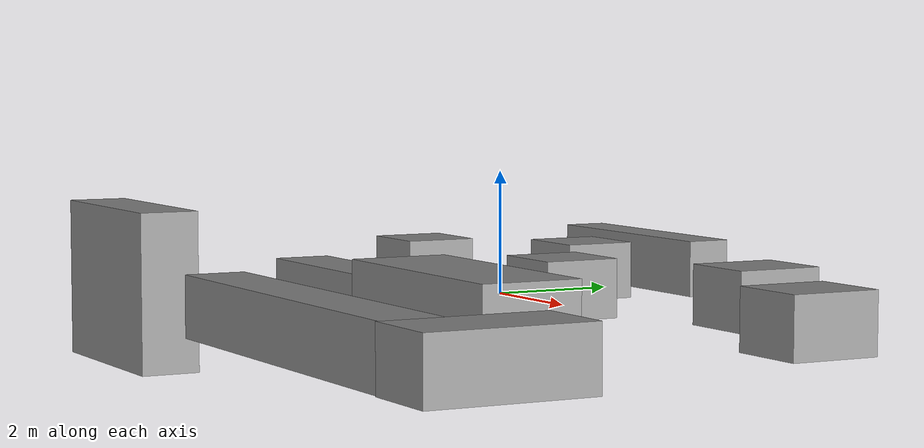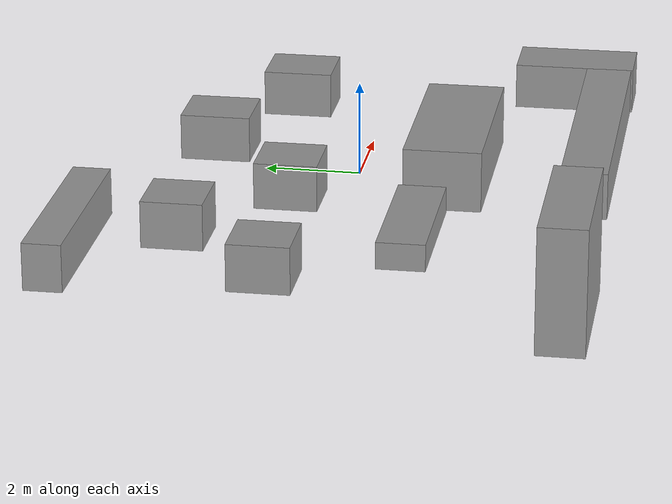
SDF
<?xml version='1.0'?>
<sdf version='1.7'>
  <model name='Clase2'>
    <link name='link_3'>
      <inertial>
        <mass>1.74152</mass>
        <inertia>
          <ixx>0.386103</ixx>
          <ixy>0</ixy>
          <ixz>0</ixz>
          <iyy>0.410208</iyy>
          <iyz>0</iyz>
          <izz>0.506057</izz>
        </inertia>
        <pose>0 0 0 0 -0 0</pose>
      </inertial>
      <pose>-4.93354 1.16545 0 0 -0 0</pose>
      <visual name='visual'>
        <pose>0 0 0 0 -0 0</pose>
        <geometry>
          <box>
            <size>1.3515 1.28859 1</size>
          </box>
        </geometry>
        <material>
          <lighting>1</lighting>
          <script>
            <uri>file://media/materials/scripts/gazebo.material</uri>
            <name>Gazebo/Grey</name>
          </script>
          <shader type='pixel'/>
        </material>
        <transparency>0</transparency>
        <cast_shadows>1</cast_shadows>
      </visual>
      <collision name='collision'>
        <laser_retro>0</laser_retro>
        <max_contacts>10</max_contacts>
        <pose>0 0 0 0 -0 0</pose>
        <geometry>
          <box>
            <size>1.3515 1.28859 1</size>
          </box>
        </geometry>
        <surface>
          <friction>
            <ode>
              <mu>1</mu>
              <mu2>1</mu2>
              <fdir1>0 0 0</fdir1>
              <slip1>0</slip1>
              <slip2>0</slip2>
            </ode>
            <torsional>
              <coefficient>1</coefficient>
              <patch_radius>0</patch_radius>
              <surface_radius>0</surface_radius>
              <use_patch_radius>1</use_patch_radius>
              <ode>
                <slip>0</slip>
              </ode>
            </torsional>
          </friction>
          <bounce>
            <restitution_coefficient>0</restitution_coefficient>
            <threshold>1e+06</threshold>
          </bounce>
          <contact>
            <collide_without_contact>0</collide_without_contact>
            <collide_without_contact_bitmask>1</collide_without_contact_bitmask>
            <collide_bitmask>1</collide_bitmask>
            <ode>
              <soft_cfm>0</soft_cfm>
              <soft_erp>0.2</soft_erp>
              <kp>1e+13</kp>
              <kd>1</kd>
              <max_vel>0.01</max_vel>
              <min_depth>0</min_depth>
            </ode>
            <bullet>
              <split_impulse>1</split_impulse>
              <split_impulse_penetration_threshold>-0.01</split_impulse_penetration_threshold>
              <soft_cfm>0</soft_cfm>
              <soft_erp>0.2</soft_erp>
              <kp>1e+13</kp>
              <kd>1</kd>
            </bullet>
          </contact>
        </surface>
      </collision>
    </link>
    <link name='link_3_clone'>
      <inertial>
        <mass>1.8185</mass>
        <inertia>
          <ixx>0.425906</ixx>
          <ixy>0</ixy>
          <ixz>0</ixz>
          <iyy>0.42834</iyy>
          <iyz>0</iyz>
          <izz>0.551163</izz>
        </inertia>
        <pose>0 0 0 0 -0 0</pose>
      </inertial>
      <pose>-0.416889 1.41685 0 0 -0 0</pose>
      <visual name='visual'>
        <pose>0 0 0 0 -0 0</pose>
        <geometry>
          <box>
            <size>1.3515 1.34555 1</size>
          </box>
        </geometry>
        <material>
          <lighting>1</lighting>
          <script>
            <uri>file://media/materials/scripts/gazebo.material</uri>
            <name>Gazebo/Grey</name>
          </script>
          <shader type='pixel'/>
        </material>
        <transparency>0</transparency>
        <cast_shadows>1</cast_shadows>
      </visual>
      <collision name='collision'>
        <laser_retro>0</laser_retro>
        <max_contacts>10</max_contacts>
        <pose>0 0 0 0 -0 0</pose>
        <geometry>
          <box>
            <size>1.3515 1.34555 1</size>
          </box>
        </geometry>
        <surface>
          <friction>
            <ode>
              <mu>1</mu>
              <mu2>1</mu2>
              <fdir1>0 0 0</fdir1>
              <slip1>0</slip1>
              <slip2>0</slip2>
            </ode>
            <torsional>
              <coefficient>1</coefficient>
              <patch_radius>0</patch_radius>
              <surface_radius>0</surface_radius>
              <use_patch_radius>1</use_patch_radius>
              <ode>
                <slip>0</slip>
              </ode>
            </torsional>
          </friction>
          <bounce>
            <restitution_coefficient>0</restitution_coefficient>
            <threshold>1e+06</threshold>
          </bounce>
          <contact>
            <collide_without_contact>0</collide_without_contact>
            <collide_without_contact_bitmask>1</collide_without_contact_bitmask>
            <collide_bitmask>1</collide_bitmask>
            <ode>
              <soft_cfm>0</soft_cfm>
              <soft_erp>0.2</soft_erp>
              <kp>1e+13</kp>
              <kd>1</kd>
              <max_vel>0.01</max_vel>
              <min_depth>0</min_depth>
            </ode>
            <bullet>
              <split_impulse>1</split_impulse>
              <split_impulse_penetration_threshold>-0.01</split_impulse_penetration_threshold>
              <soft_cfm>0</soft_cfm>
              <soft_erp>0.2</soft_erp>
              <kp>1e+13</kp>
              <kd>1</kd>
            </bullet>
          </contact>
        </surface>
      </collision>
    </link>
    <link name='link_3_clone_0'>
      <inertial>
        <mass>2.04941</mass>
        <inertia>
          <ixx>0.563501</ixx>
          <ixy>0</ixy>
          <ixz>0</ixz>
          <iyy>0.48273</iyy>
          <iyz>0</iyz>
          <izz>0.704662</izz>
        </inertia>
        <pose>0 0 0 0 -0 0</pose>
      </inertial>
      <pose>5.46668 2.16403 0 0 -0 0</pose>
      <visual name='visual'>
        <pose>0 0 0 0 -0 0</pose>
        <geometry>
          <box>
            <size>1.3515 1.51641 1</size>
          </box>
        </geometry>
        <material>
          <lighting>1</lighting>
          <script>
            <uri>file://media/materials/scripts/gazebo.material</uri>
            <name>Gazebo/Grey</name>
          </script>
          <shader type='pixel'/>
        </material>
        <transparency>0</transparency>
        <cast_shadows>1</cast_shadows>
      </visual>
      <collision name='collision'>
        <laser_retro>0</laser_retro>
        <max_contacts>10</max_contacts>
        <pose>0 0 0 0 -0 0</pose>
        <geometry>
          <box>
            <size>1.3515 1.51641 1</size>
          </box>
        </geometry>
        <surface>
          <friction>
            <ode>
              <mu>1</mu>
              <mu2>1</mu2>
              <fdir1>0 0 0</fdir1>
              <slip1>0</slip1>
              <slip2>0</slip2>
            </ode>
            <torsional>
              <coefficient>1</coefficient>
              <patch_radius>0</patch_radius>
              <surface_radius>0</surface_radius>
              <use_patch_radius>1</use_patch_radius>
              <ode>
                <slip>0</slip>
              </ode>
            </torsional>
          </friction>
          <bounce>
            <restitution_coefficient>0</restitution_coefficient>
            <threshold>1e+06</threshold>
          </bounce>
          <contact>
            <collide_without_contact>0</collide_without_contact>
            <collide_without_contact_bitmask>1</collide_without_contact_bitmask>
            <collide_bitmask>1</collide_bitmask>
            <ode>
              <soft_cfm>0</soft_cfm>
              <soft_erp>0.2</soft_erp>
              <kp>1e+13</kp>
              <kd>1</kd>
              <max_vel>0.01</max_vel>
              <min_depth>0</min_depth>
            </ode>
            <bullet>
              <split_impulse>1</split_impulse>
              <split_impulse_penetration_threshold>-0.01</split_impulse_penetration_threshold>
              <soft_cfm>0</soft_cfm>
              <soft_erp>0.2</soft_erp>
              <kp>1e+13</kp>
              <kd>1</kd>
            </bullet>
          </contact>
        </surface>
      </collision>
    </link>
    <link name='link_3_clone_1'>
      <inertial>
        <mass>2.04941</mass>
        <inertia>
          <ixx>0.563501</ixx>
          <ixy>0</ixy>
          <ixz>0</ixz>
          <iyy>0.48273</iyy>
          <iyz>0</iyz>
          <izz>0.704662</izz>
        </inertia>
        <pose>0 0 0 0 -0 0</pose>
      </inertial>
      <pose>2.31164 3.44779 0 0 -0 0</pose>
      <visual name='visual'>
        <pose>0 0 0 0 -0 0</pose>
        <geometry>
          <box>
            <size>1.3515 1.51641 1</size>
          </box>
        </geometry>
        <material>
          <lighting>1</lighting>
          <script>
            <uri>file://media/materials/scripts/gazebo.material</uri>
            <name>Gazebo/Grey</name>
          </script>
          <shader type='pixel'/>
        </material>
        <transparency>0</transparency>
        <cast_shadows>1</cast_shadows>
      </visual>
      <collision name='collision'>
        <laser_retro>0</laser_retro>
        <max_contacts>10</max_contacts>
        <pose>0 0 0 0 -0 0</pose>
        <geometry>
          <box>
            <size>1.3515 1.51641 1</size>
          </box>
        </geometry>
        <surface>
          <friction>
            <ode>
              <mu>1</mu>
              <mu2>1</mu2>
              <fdir1>0 0 0</fdir1>
              <slip1>0</slip1>
              <slip2>0</slip2>
            </ode>
            <torsional>
              <coefficient>1</coefficient>
              <patch_radius>0</patch_radius>
              <surface_radius>0</surface_radius>
              <use_patch_radius>1</use_patch_radius>
              <ode>
                <slip>0</slip>
              </ode>
            </torsional>
          </friction>
          <bounce>
            <restitution_coefficient>0</restitution_coefficient>
            <threshold>1e+06</threshold>
          </bounce>
          <contact>
            <collide_without_contact>0</collide_without_contact>
            <collide_without_contact_bitmask>1</collide_without_contact_bitmask>
            <collide_bitmask>1</collide_bitmask>
            <ode>
              <soft_cfm>0</soft_cfm>
              <soft_erp>0.2</soft_erp>
              <kp>1e+13</kp>
              <kd>1</kd>
              <max_vel>0.01</max_vel>
              <min_depth>0</min_depth>
            </ode>
            <bullet>
              <split_impulse>1</split_impulse>
              <split_impulse_penetration_threshold>-0.01</split_impulse_penetration_threshold>
              <soft_cfm>0</soft_cfm>
              <soft_erp>0.2</soft_erp>
              <kp>1e+13</kp>
              <kd>1</kd>
            </bullet>
          </contact>
        </surface>
      </collision>
    </link>
    <link name='link_3_clone_2'>
      <inertial>
        <mass>1.74223</mass>
        <inertia>
          <ixx>0.386462</ixx>
          <ixy>0</ixy>
          <ixz>0</ixz>
          <iyy>0.410376</iyy>
          <iyz>0</iyz>
          <izz>0.506466</izz>
        </inertia>
        <pose>0 0 0 0 -0 0</pose>
      </inertial>
      <pose>-2.92921 3.31447 0 0 -0 0</pose>
      <visual name='visual'>
        <pose>0 0 0 0 -0 0</pose>
        <geometry>
          <box>
            <size>1.3515 1.28912 1</size>
          </box>
        </geometry>
        <material>
          <lighting>1</lighting>
          <script>
            <uri>file://media/materials/scripts/gazebo.material</uri>
            <name>Gazebo/Grey</name>
          </script>
          <shader type='pixel'/>
        </material>
        <transparency>0</transparency>
        <cast_shadows>1</cast_shadows>
      </visual>
      <collision name='collision'>
        <laser_retro>0</laser_retro>
        <max_contacts>10</max_contacts>
        <pose>0 0 0 0 -0 0</pose>
        <geometry>
          <box>
            <size>1.3515 1.28912 1</size>
          </box>
        </geometry>
        <surface>
          <friction>
            <ode>
              <mu>1</mu>
              <mu2>1</mu2>
              <fdir1>0 0 0</fdir1>
              <slip1>0</slip1>
              <slip2>0</slip2>
            </ode>
            <torsional>
              <coefficient>1</coefficient>
              <patch_radius>0</patch_radius>
              <surface_radius>0</surface_radius>
              <use_patch_radius>1</use_patch_radius>
              <ode>
                <slip>0</slip>
              </ode>
            </torsional>
          </friction>
          <bounce>
            <restitution_coefficient>0</restitution_coefficient>
            <threshold>1e+06</threshold>
          </bounce>
          <contact>
            <collide_without_contact>0</collide_without_contact>
            <collide_without_contact_bitmask>1</collide_without_contact_bitmask>
            <collide_bitmask>1</collide_bitmask>
            <ode>
              <soft_cfm>0</soft_cfm>
              <soft_erp>0.2</soft_erp>
              <kp>1e+13</kp>
              <kd>1</kd>
              <max_vel>0.01</max_vel>
              <min_depth>0</min_depth>
            </ode>
            <bullet>
              <split_impulse>1</split_impulse>
              <split_impulse_penetration_threshold>-0.01</split_impulse_penetration_threshold>
              <soft_cfm>0</soft_cfm>
              <soft_erp>0.2</soft_erp>
              <kp>1e+13</kp>
              <kd>1</kd>
            </bullet>
          </contact>
        </surface>
      </collision>
    </link>
    <link name='link_4'>
      <inertial>
        <mass>9.47217</mass>
        <inertia>
          <ixx>3.56967</ixx>
          <ixy>0</ixy>
          <ixz>0</ixz>
          <iyy>16.0019</iyy>
          <iyz>0</iyz>
          <izz>16.8245</izz>
        </inertia>
        <pose>0 0 0 0 -0 0</pose>
      </inertial>
      <pose>1.963 -1.76972 0 0 -0 0</pose>
      <visual name='visual'>
        <pose>0 0 0 0 -0 0</pose>
        <geometry>
          <box>
            <size>4.30491 1.66798 1.31914</size>
          </box>
        </geometry>
        <material>
          <lighting>1</lighting>
          <script>
            <uri>file://media/materials/scripts/gazebo.material</uri>
            <name>Gazebo/Grey</name>
          </script>
          <shader type='pixel'/>
        </material>
        <transparency>0</transparency>
        <cast_shadows>1</cast_shadows>
      </visual>
      <collision name='collision'>
        <laser_retro>0</laser_retro>
        <max_contacts>10</max_contacts>
        <pose>0 0 0 0 -0 0</pose>
        <geometry>
          <box>
            <size>4.30491 1.66798 1.31914</size>
          </box>
        </geometry>
        <surface>
          <friction>
            <ode>
              <mu>1</mu>
              <mu2>1</mu2>
              <fdir1>0 0 0</fdir1>
              <slip1>0</slip1>
              <slip2>0</slip2>
            </ode>
            <torsional>
              <coefficient>1</coefficient>
              <patch_radius>0</patch_radius>
              <surface_radius>0</surface_radius>
              <use_patch_radius>1</use_patch_radius>
              <ode>
                <slip>0</slip>
              </ode>
            </torsional>
          </friction>
          <bounce>
            <restitution_coefficient>0</restitution_coefficient>
            <threshold>1e+06</threshold>
          </bounce>
          <contact>
            <collide_without_contact>0</collide_without_contact>
            <collide_without_contact_bitmask>1</collide_without_contact_bitmask>
            <collide_bitmask>1</collide_bitmask>
            <ode>
              <soft_cfm>0</soft_cfm>
              <soft_erp>0.2</soft_erp>
              <kp>1e+13</kp>
              <kd>1</kd>
              <max_vel>0.01</max_vel>
              <min_depth>0</min_depth>
            </ode>
            <bullet>
              <split_impulse>1</split_impulse>
              <split_impulse_penetration_threshold>-0.01</split_impulse_penetration_threshold>
              <soft_cfm>0</soft_cfm>
              <soft_erp>0.2</soft_erp>
              <kp>1e+13</kp>
              <kd>1</kd>
            </bullet>
          </contact>
        </surface>
      </collision>
    </link>
    <link name='link_5'>
      <inertial>
        <mass>3.59017</mass>
        <inertia>
          <ixx>2.4007</ixx>
          <ixy>0</ixy>
          <ixz>0</ixz>
          <iyy>0.848182</iyy>
          <iyz>0</iyz>
          <izz>2.65052</izz>
        </inertia>
        <pose>0 0 0 0 -0 0</pose>
      </inertial>
      <pose>6.83279 -3.99985 0 0 -0 0</pose>
      <visual name='visual'>
        <pose>0 0 0 0 -0 0</pose>
        <geometry>
          <box>
            <size>1.35463 2.65033 1</size>
          </box>
        </geometry>
        <material>
          <lighting>1</lighting>
          <script>
            <uri>file://media/materials/scripts/gazebo.material</uri>
            <name>Gazebo/Grey</name>
          </script>
          <shader type='pixel'/>
        </material>
        <transparency>0</transparency>
        <cast_shadows>1</cast_shadows>
      </visual>
      <collision name='collision'>
        <laser_retro>0</laser_retro>
        <max_contacts>10</max_contacts>
        <pose>0 0 0 0 -0 0</pose>
        <geometry>
          <box>
            <size>1.35463 2.65033 1</size>
          </box>
        </geometry>
        <surface>
          <friction>
            <ode>
              <mu>1</mu>
              <mu2>1</mu2>
              <fdir1>0 0 0</fdir1>
              <slip1>0</slip1>
              <slip2>0</slip2>
            </ode>
            <torsional>
              <coefficient>1</coefficient>
              <patch_radius>0</patch_radius>
              <surface_radius>0</surface_radius>
              <use_patch_radius>1</use_patch_radius>
              <ode>
                <slip>0</slip>
              </ode>
            </torsional>
          </friction>
          <bounce>
            <restitution_coefficient>0</restitution_coefficient>
            <threshold>1e+06</threshold>
          </bounce>
          <contact>
            <collide_without_contact>0</collide_without_contact>
            <collide_without_contact_bitmask>1</collide_without_contact_bitmask>
            <collide_bitmask>1</collide_bitmask>
            <ode>
              <soft_cfm>0</soft_cfm>
              <soft_erp>0.2</soft_erp>
              <kp>1e+13</kp>
              <kd>1</kd>
              <max_vel>0.01</max_vel>
              <min_depth>0</min_depth>
            </ode>
            <bullet>
              <split_impulse>1</split_impulse>
              <split_impulse_penetration_threshold>-0.01</split_impulse_penetration_threshold>
              <soft_cfm>0</soft_cfm>
              <soft_erp>0.2</soft_erp>
              <kp>1e+13</kp>
              <kd>1</kd>
            </bullet>
          </contact>
        </surface>
      </collision>
    </link>
    <link name='link_6'>
      <inertial>
        <mass>6.77616</mass>
        <inertia>
          <ixx>1.12936</ixx>
          <ixy>0</ixy>
          <ixz>0</ixz>
          <iyy>26.4873</iyy>
          <iyz>0</iyz>
          <izz>26.4873</izz>
        </inertia>
        <pose>0 0 0 0 -0 0</pose>
      </inertial>
      <pose>2.77889 -4.7868 0 0 -0 0</pose>
      <visual name='visual'>
        <pose>0 0 0 0 -0 0</pose>
        <geometry>
          <box>
            <size>6.77545 1 1</size>
          </box>
        </geometry>
        <material>
          <lighting>1</lighting>
          <script>
            <uri>file://media/materials/scripts/gazebo.material</uri>
            <name>Gazebo/Grey</name>
          </script>
          <shader type='pixel'/>
        </material>
        <transparency>0</transparency>
        <cast_shadows>1</cast_shadows>
      </visual>
      <collision name='collision'>
        <laser_retro>0</laser_retro>
        <max_contacts>10</max_contacts>
        <pose>0 0 0 0 -0 0</pose>
        <geometry>
          <box>
            <size>6.77545 1 1</size>
          </box>
        </geometry>
        <surface>
          <friction>
            <ode>
              <mu>1</mu>
              <mu2>1</mu2>
              <fdir1>0 0 0</fdir1>
              <slip1>0</slip1>
              <slip2>0</slip2>
            </ode>
            <torsional>
              <coefficient>1</coefficient>
              <patch_radius>0</patch_radius>
              <surface_radius>0</surface_radius>
              <use_patch_radius>1</use_patch_radius>
              <ode>
                <slip>0</slip>
              </ode>
            </torsional>
          </friction>
          <bounce>
            <restitution_coefficient>0</restitution_coefficient>
            <threshold>1e+06</threshold>
          </bounce>
          <contact>
            <collide_without_contact>0</collide_without_contact>
            <collide_without_contact_bitmask>1</collide_without_contact_bitmask>
            <collide_bitmask>1</collide_bitmask>
            <ode>
              <soft_cfm>0</soft_cfm>
              <soft_erp>0.2</soft_erp>
              <kp>1e+13</kp>
              <kd>1</kd>
              <max_vel>0.01</max_vel>
              <min_depth>0</min_depth>
            </ode>
            <bullet>
              <split_impulse>1</split_impulse>
              <split_impulse_penetration_threshold>-0.01</split_impulse_penetration_threshold>
              <soft_cfm>0</soft_cfm>
              <soft_erp>0.2</soft_erp>
              <kp>1e+13</kp>
              <kd>1</kd>
            </bullet>
          </contact>
        </surface>
      </collision>
    </link>
    <link name='link_7'>
      <inertial>
        <mass>1.84499</mass>
        <inertia>
          <ixx>0.203501</ixx>
          <ixy>0</ixy>
          <ixz>0</ixz>
          <iyy>1.66714</iyy>
          <iyz>0</iyz>
          <izz>1.77114</izz>
        </inertia>
        <pose>0 0 0 0 -0 0</pose>
      </inertial>
      <pose>-2.90039 -1.50141 0 0 -0 0</pose>
      <visual name='visual'>
        <pose>0 0 0 0 -0 0</pose>
        <geometry>
          <box>
            <size>3.2434 1 0.568848</size>
          </box>
        </geometry>
        <material>
          <lighting>1</lighting>
          <script>
            <uri>file://media/materials/scripts/gazebo.material</uri>
            <name>Gazebo/Grey</name>
          </script>
          <shader type='pixel'/>
        </material>
        <transparency>0</transparency>
        <cast_shadows>1</cast_shadows>
      </visual>
      <collision name='collision'>
        <laser_retro>0</laser_retro>
        <max_contacts>10</max_contacts>
        <pose>0 0 0 0 -0 0</pose>
        <geometry>
          <box>
            <size>3.2434 1 0.568848</size>
          </box>
        </geometry>
        <surface>
          <friction>
            <ode>
              <mu>1</mu>
              <mu2>1</mu2>
              <fdir1>0 0 0</fdir1>
              <slip1>0</slip1>
              <slip2>0</slip2>
            </ode>
            <torsional>
              <coefficient>1</coefficient>
              <patch_radius>0</patch_radius>
              <surface_radius>0</surface_radius>
              <use_patch_radius>1</use_patch_radius>
              <ode>
                <slip>0</slip>
              </ode>
            </torsional>
          </friction>
          <bounce>
            <restitution_coefficient>0</restitution_coefficient>
            <threshold>1e+06</threshold>
          </bounce>
          <contact>
            <collide_without_contact>0</collide_without_contact>
            <collide_without_contact_bitmask>1</collide_without_contact_bitmask>
            <collide_bitmask>1</collide_bitmask>
            <ode>
              <soft_cfm>0</soft_cfm>
              <soft_erp>0.2</soft_erp>
              <kp>1e+13</kp>
              <kd>1</kd>
              <max_vel>0.01</max_vel>
              <min_depth>0</min_depth>
            </ode>
            <bullet>
              <split_impulse>1</split_impulse>
              <split_impulse_penetration_threshold>-0.01</split_impulse_penetration_threshold>
              <soft_cfm>0</soft_cfm>
              <soft_erp>0.2</soft_erp>
              <kp>1e+13</kp>
              <kd>1</kd>
            </bullet>
          </contact>
        </surface>
      </collision>
    </link>
    <link name='link_8'>
      <inertial>
        <mass>9.1604</mass>
        <inertia>
          <ixx>6.21717</ixx>
          <ixy>0</ixy>
          <ixz>0</ixz>
          <iyy>14.4202</iyy>
          <iyz>0</iyz>
          <izz>9.72977</izz>
        </inertia>
        <pose>0 0 0 0 -0 0</pose>
      </inertial>
      <pose>-4.1681 -4.81254 0 0 -0 0</pose>
      <visual name='visual'>
        <pose>0 0 0 0 -0 0</pose>
        <geometry>
          <box>
            <size>3.42722 1 2.6729</size>
          </box>
        </geometry>
        <material>
          <lighting>1</lighting>
          <script>
            <uri>file://media/materials/scripts/gazebo.material</uri>
            <name>Gazebo/Grey</name>
          </script>
          <shader type='pixel'/>
        </material>
        <transparency>0</transparency>
        <cast_shadows>1</cast_shadows>
      </visual>
      <collision name='collision'>
        <laser_retro>0</laser_retro>
        <max_contacts>10</max_contacts>
        <pose>0 0 0 0 -0 0</pose>
        <geometry>
          <box>
            <size>3.42722 1 2.6729</size>
          </box>
        </geometry>
        <surface>
          <friction>
            <ode>
              <mu>1</mu>
              <mu2>1</mu2>
              <fdir1>0 0 0</fdir1>
              <slip1>0</slip1>
              <slip2>0</slip2>
            </ode>
            <torsional>
              <coefficient>1</coefficient>
              <patch_radius>0</patch_radius>
              <surface_radius>0</surface_radius>
              <use_patch_radius>1</use_patch_radius>
              <ode>
                <slip>0</slip>
              </ode>
            </torsional>
          </friction>
          <bounce>
            <restitution_coefficient>0</restitution_coefficient>
            <threshold>1e+06</threshold>
          </bounce>
          <contact>
            <collide_without_contact>0</collide_without_contact>
            <collide_without_contact_bitmask>1</collide_without_contact_bitmask>
            <collide_bitmask>1</collide_bitmask>
            <ode>
              <soft_cfm>0</soft_cfm>
              <soft_erp>0.2</soft_erp>
              <kp>1e+13</kp>
              <kd>1</kd>
              <max_vel>0.01</max_vel>
              <min_depth>0</min_depth>
            </ode>
            <bullet>
              <split_impulse>1</split_impulse>
              <split_impulse_penetration_threshold>-0.01</split_impulse_penetration_threshold>
              <soft_cfm>0</soft_cfm>
              <soft_erp>0.2</soft_erp>
              <kp>1e+13</kp>
              <kd>1</kd>
            </bullet>
          </contact>
        </surface>
      </collision>
    </link>
    <link name='link_9'>
      <inertial>
        <mass>3.45234</mass>
        <inertia>
          <ixx>0.472262</ixx>
          <ixy>0</ixy>
          <ixz>0</ixz>
          <iyy>5.63312</iyy>
          <iyz>0</iyz>
          <izz>5.53</izz>
        </inertia>
        <pose>0 0 0 0 -0 0</pose>
      </inertial>
      <pose>-4.00488 5.36172 0 0 -0 0</pose>
      <visual name='visual'>
        <pose>0 0 0 0 -0 0</pose>
        <geometry>
          <box>
            <size>4.31048 0.80096 1</size>
          </box>
        </geometry>
        <material>
          <lighting>1</lighting>
          <script>
            <uri>file://media/materials/scripts/gazebo.material</uri>
            <name>Gazebo/Grey</name>
          </script>
          <shader type='pixel'/>
        </material>
        <transparency>0</transparency>
        <cast_shadows>1</cast_shadows>
      </visual>
      <collision name='collision'>
        <laser_retro>0</laser_retro>
        <max_contacts>10</max_contacts>
        <pose>0 0 0 0 -0 0</pose>
        <geometry>
          <box>
            <size>4.31048 0.80096 1</size>
          </box>
        </geometry>
        <surface>
          <friction>
            <ode>
              <mu>1</mu>
              <mu2>1</mu2>
              <fdir1>0 0 0</fdir1>
              <slip1>0</slip1>
              <slip2>0</slip2>
            </ode>
            <torsional>
              <coefficient>1</coefficient>
              <patch_radius>0</patch_radius>
              <surface_radius>0</surface_radius>
              <use_patch_radius>1</use_patch_radius>
              <ode>
                <slip>0</slip>
              </ode>
            </torsional>
          </friction>
          <bounce>
            <restitution_coefficient>0</restitution_coefficient>
            <threshold>1e+06</threshold>
          </bounce>
          <contact>
            <collide_without_contact>0</collide_without_contact>
            <collide_without_contact_bitmask>1</collide_without_contact_bitmask>
            <collide_bitmask>1</collide_bitmask>
            <ode>
              <soft_cfm>0</soft_cfm>
              <soft_erp>0.2</soft_erp>
              <kp>1e+13</kp>
              <kd>1</kd>
              <max_vel>0.01</max_vel>
              <min_depth>0</min_depth>
            </ode>
            <bullet>
              <split_impulse>1</split_impulse>
              <split_impulse_penetration_threshold>-0.01</split_impulse_penetration_threshold>
              <soft_cfm>0</soft_cfm>
              <soft_erp>0.2</soft_erp>
              <kp>1e+13</kp>
              <kd>1</kd>
            </bullet>
          </contact>
        </surface>
      </collision>
    </link>
    <static>0</static>
    <allow_auto_disable>1</allow_auto_disable>
  </model>
</sdf>
